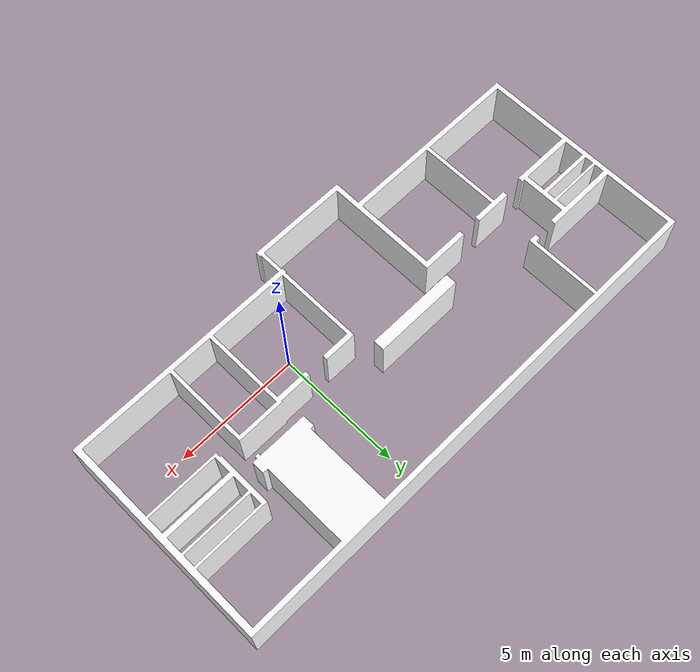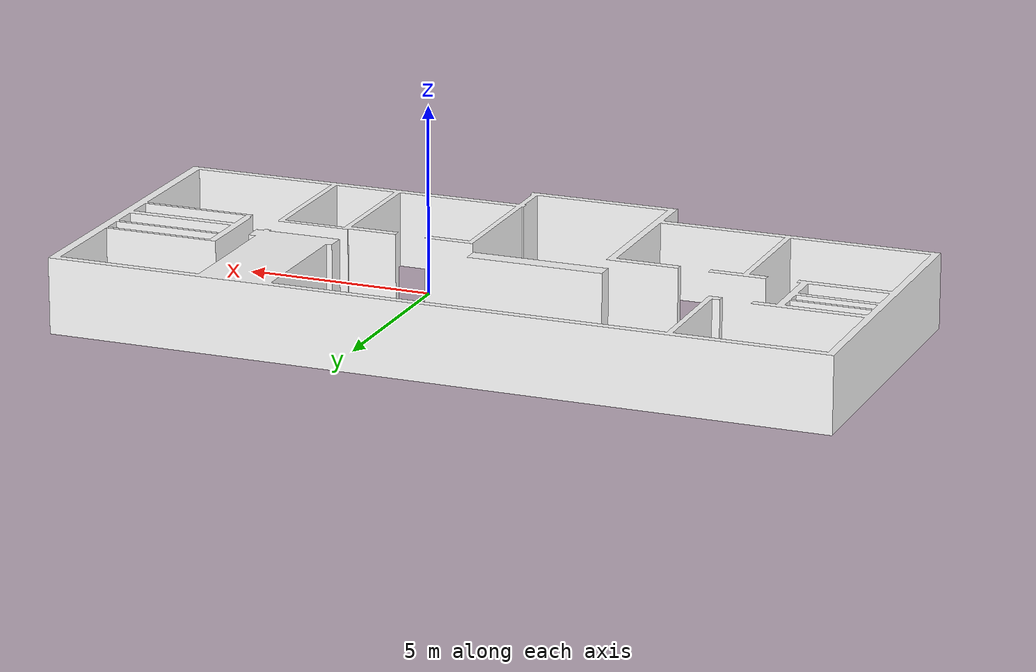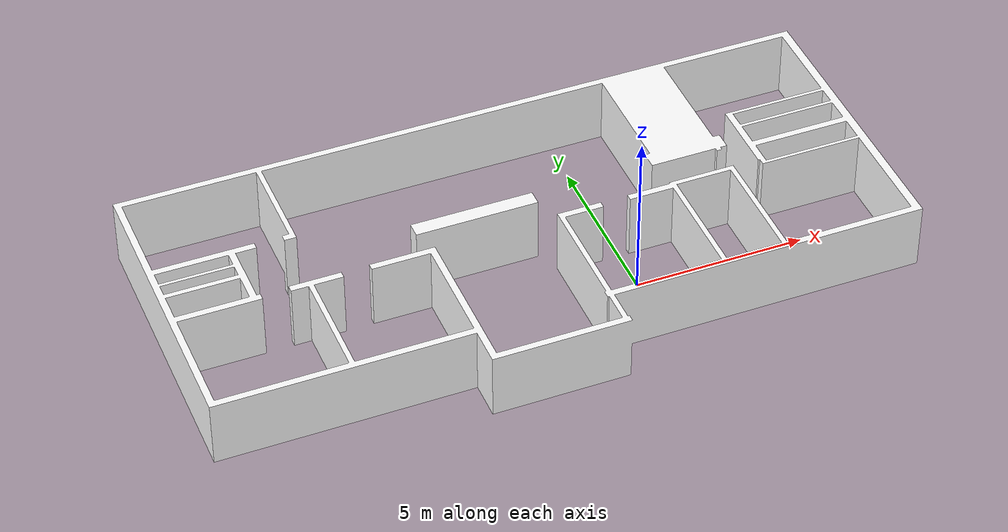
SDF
<?xml version="1.0" ?>
<sdf version="1.4">

<model name="home">
  <link name="link">
    <inertial>
      <mass>15</mass>
      <inertia>
        <ixx>0.0</ixx>
        <ixy>0.0</ixy>
        <ixz>0.0</ixz>
        <iyy>0.0</iyy>
        <iyz>0.0</iyz>
        <izz>0.0</izz>
      </inertia>
    </inertial>
    <collision name="collision">
      <pose>0 0 0 0 0 0</pose>
      <geometry>
        <mesh>
          <uri>model://home/meshes/home.stl</uri>
        </mesh>
      </geometry>
    </collision>
    <visual name="visual">
      <pose>0 0 0 0 0 0</pose>
      <geometry>
        <mesh>
          <uri>model://home/meshes/home.stl</uri>
        </mesh>
      </geometry>
      <material>
        <ambient>1 1 1 1</ambient>
        <diffuse>1 1 1 1</diffuse>
        <specular>0.5 0.5 0.5 1</specular>
        <emissive>0 0 0 1</emissive>
      </material>
    </visual>
  </link>
  <static>1</static>
</model>

</sdf>
